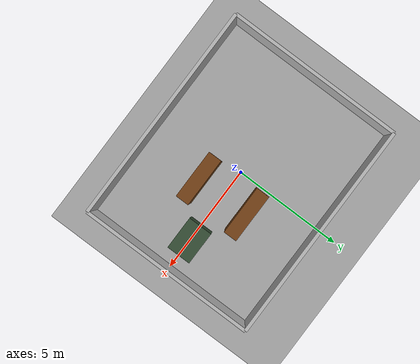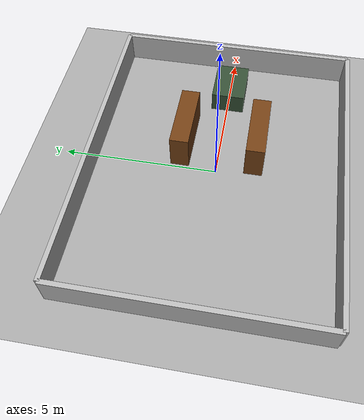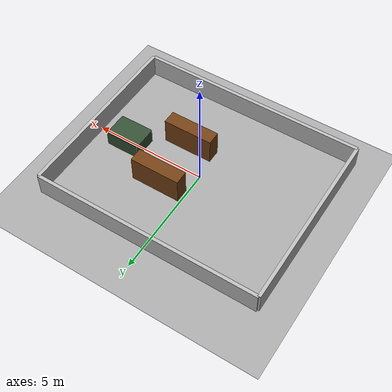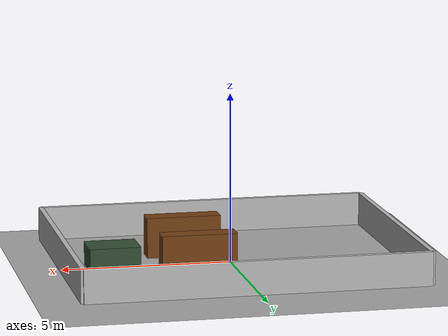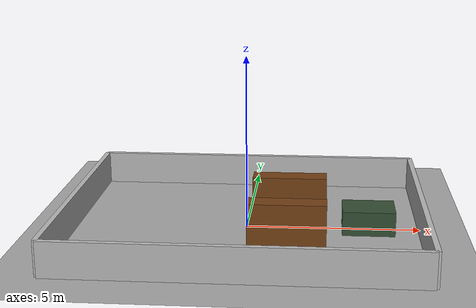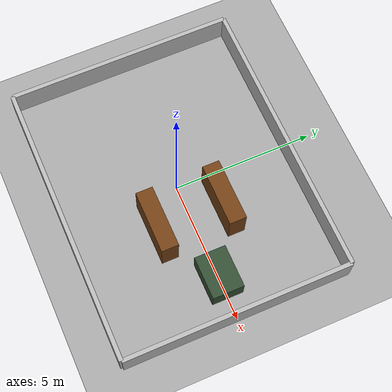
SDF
<?xml version="1.0"?>
<sdf version="1.8">
  <world name="mentorpi_warehouse">
    <physics name="1ms" type="ignored"><max_step_size>0.001</max_step_size><real_time_factor>1.0</real_time_factor></physics>
    <plugin filename="ignition-gazebo-physics-system" name="ignition::gazebo::systems::Physics"/>
    <plugin filename="ignition-gazebo-user-commands-system" name="ignition::gazebo::systems::UserCommands"/>
    <plugin filename="ignition-gazebo-scene-broadcaster-system" name="ignition::gazebo::systems::SceneBroadcaster"/>
    <plugin filename="ignition-gazebo-sensors-system" name="ignition::gazebo::systems::Sensors"><render_engine>ogre2</render_engine></plugin>
    <plugin filename="ignition-gazebo-imu-system" name="ignition::gazebo::systems::Imu"/>
    <scene><ambient>0.55 0.55 0.55 1</ambient><background>0.75 0.82 0.90 1</background></scene>
    <light name="sun" type="directional"><cast_shadows>true</cast_shadows><pose>0 0 8 0 0 0</pose><diffuse>0.9 0.9 0.9 1</diffuse><direction>-0.4 0.2 -1</direction></light>
    <model name="ground"><static>true</static><link name="ground_link">
      <collision name="ground_collision"><geometry><plane><normal>0 0 1</normal><size>12 10</size></plane></geometry><surface><friction><ode><mu>50</mu></ode></friction></surface></collision>
      <visual name="ground_visual"><geometry><plane><normal>0 0 1</normal><size>12 10</size></plane></geometry><material><ambient>0.55 0.55 0.55 1</ambient><diffuse>0.65 0.65 0.65 1</diffuse></material></visual>
    </link></model>
    <model name="warehouse_walls"><static>true</static><link name="walls">
      <collision name="north"><pose>0 4 0.5 0 0 0</pose><geometry><box><size>10 0.15 1</size></box></geometry></collision><visual name="north_v"><pose>0 4 0.5 0 0 0</pose><geometry><box><size>10 0.15 1</size></box></geometry></visual>
      <collision name="south"><pose>0 -4 0.5 0 0 0</pose><geometry><box><size>10 0.15 1</size></box></geometry></collision><visual name="south_v"><pose>0 -4 0.5 0 0 0</pose><geometry><box><size>10 0.15 1</size></box></geometry></visual>
      <collision name="east"><pose>5 0 0.5 0 0 0</pose><geometry><box><size>0.15 8 1</size></box></geometry></collision><visual name="east_v"><pose>5 0 0.5 0 0 0</pose><geometry><box><size>0.15 8 1</size></box></geometry></visual>
      <collision name="west"><pose>-5 0 0.5 0 0 0</pose><geometry><box><size>0.15 8 1</size></box></geometry></collision><visual name="west_v"><pose>-5 0 0.5 0 0 0</pose><geometry><box><size>0.15 8 1</size></box></geometry></visual>
    </link></model>
    <model name="shelf_left"><static>true</static><pose>1.2 1.2 0.6 0 0 0</pose><link name="body"><collision name="c"><geometry><box><size>2.2 0.6 1.2</size></box></geometry></collision><visual name="v"><geometry><box><size>2.2 0.6 1.2</size></box></geometry><material><diffuse>0.45 0.25 0.08 1</diffuse></material></visual></link></model>
    <model name="shelf_right"><static>true</static><pose>1.2 -1.2 0.6 0 0 0</pose><link name="body"><collision name="c"><geometry><box><size>2.2 0.6 1.2</size></box></geometry></collision><visual name="v"><geometry><box><size>2.2 0.6 1.2</size></box></geometry><material><diffuse>0.45 0.25 0.08 1</diffuse></material></visual></link></model>
    <model name="corridor_a_marker"><static>true</static><pose>3.5 0 0.35 0 0 0</pose><link name="body"><collision name="c"><geometry><box><size>1.5 1.1 0.7</size></box></geometry></collision><visual name="v"><geometry><box><size>1.5 1.1 0.7</size></box></geometry><material><diffuse>0.20 0.30 0.20 1</diffuse></material></visual></link></model>
  </world>
</sdf>
